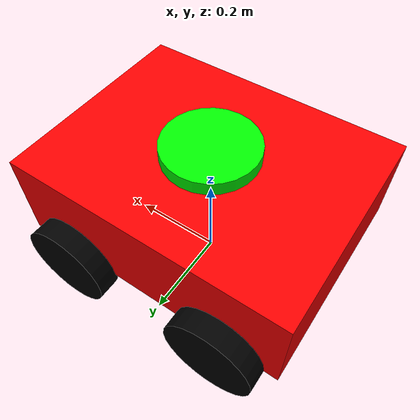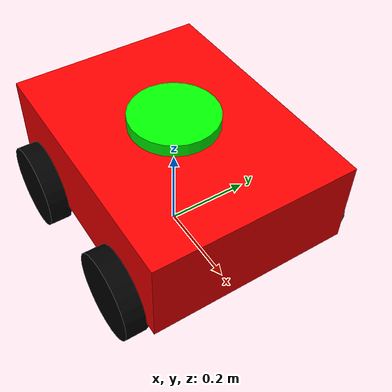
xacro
<?xml version="1.0"?>
<!-- Xacro file description-->
<robot name="myrobot" xmlns:xacro="http://www.ros.org/wiki/xacro" >

    <!-- dummy link-->
    <link name="robot_footprint"/>

    <!-- chassis link-->
    <link name="chassis">
        <inertial>
            <origin xyz="0.0 0.0 0.0" />
            <mass value="5"/>
        <inertia ixx="0.2367396327" ixy="-0.0001083173" ixz="-0.0001060526"
        iyy="0.4055129325" iyz="-0.0001774865" izz="0.329362691"/>
        </inertial>
        <visual>
            <origin xyz="0.0 0.0 0.2" />
            <geometry>
                <box size="0.6 0.46 0.2"/>
            </geometry>
            <material name="Red">
                <color rgba="1.0 0.0 0.0 1.0"/>
            </material>
        </visual>
        <collision>
            <origin xyz="0.0 0.0 0.2" />
            <geometry>
                <box size="0.6 0.46 0.2"/>
            </geometry>
            <material name="Red">
                <color rgba="1.0 0.0 0.0 1.0"/>
            </material>
        </collision>
    </link>

    <joint name="joint_chassis" type="fixed">
        <parent link="robot_footprint"/>
        <child link="chassis"/>
    </joint>

    <!-- Front left wheel link-->
    <link name="front_left_wheel">
        <inertial>
            <origin xyz="0.0 0.0 0.0" rpy="0.0 0.0 0.0"/>
            <mass value="1.1"/>
            <inertia ixx="0.0041010179" ixy="0.0" ixz="0.0" iyy="0.0041010198"
            iyz="0.0" izz="0.0076041438"/>
        </inertial>
        <visual name="front_left_wheel_visual">
            <origin xyz="0.0 0.0 0.0" rpy="0 1.5707 1.5707"/>
            <geometry>
                <cylinder radius="0.096" length="0.0498"/>
             </geometry>
             <material name="Black">
                <color rgba="0.0 0.0 0.0 1.0"/>
            </material>
        </visual>
        <collision name="front_left_wheel_collision">
            <origin xyz="0.0 0.0 0.0" rpy="0 1.5707 1.5707"/>
            <geometry>
                <cylinder radius="0.096" length="0.0498"/>
            </geometry>
            <material name="Black">
                <color rgba="0.0 0.0 0.0 1.0"/>
            </material>
        </collision>
    </link>
    <joint name="joint_front_left_wheel" type="continuous">
        <origin xyz="0.175 0.25 0.1" rpy="0.0 0.0 0.0"/>
        <parent link="chassis"/>
        <child link="front_left_wheel"/>
        <axis xyz="0 1 0" rpy="0 0 0"/>
        <limit effort="10000" velocity="1000" />
	    <dynamics damping="1.0" friction="1.0" />
    </joint>

    <!-- back left wheel link-->
    <link name="back_left_wheel">
        <inertial>
            <origin xyz="0.0 0.0 0.0" rpy="0.0 0.0 0.0"/>
            <mass value="1.1"/>
            <inertia ixx="0.0041010179" ixy="0.0" ixz="0.0" iyy="0.0041010198"
            iyz="0.0" izz="0.0076041438"/>
        </inertial>
        <visual name="back_left_wheel_visual">
            <origin xyz="0.0 0.0 0.0" rpy="0 1.5707 1.5707"/>
            <geometry>
                <cylinder radius="0.096" length="0.0498"/>
            </geometry>
            <material name="Black">
                <color rgba="0.0 0.0 0.0 1.0"/>
            </material>
        </visual>
        <collision name="back_left_wheel_collision">
            <origin xyz="0.0 0.0 0.0" rpy="0 1.5707 1.5707"/>
            <geometry>
                <cylinder radius="0.096" length="0.0498"/>
            </geometry>
            <material name="Black">
                <color rgba="0.0 0.0 0.0 1.0"/>
            </material>
        </collision>
    </link>
    <joint name="joint_back_left_wheel" type="continuous">
        <origin xyz="-0.175 0.25 0.1" rpy="0.0 0.0 0.0"/>
        <parent link="chassis"/>
        <child link="back_left_wheel"/>
        <axis xyz="0 1 0" rpy="0 0 0"/>
        <limit effort="10000" velocity="1000" />
	    <dynamics damping="1.0" friction="1.0" />
    </joint>

    <!-- front right wheel link-->
    <link name="front_right_wheel">
        <inertial>
            <origin xyz="0.0 0.0 0.0" rpy="0.0 0.0 0.0"/>
            <mass value="1.1"/>
            <inertia ixx="0.0041010179" ixy="0.0" ixz="0.0" iyy="0.0041010198"
            iyz="0.0" izz="0.0076041438"/>
        </inertial>
        <visual name="front_right_wheel_visual">
            <origin xyz="0.0 0.0 0.0" rpy="0 1.5707 1.5707"/>
            <geometry>
                <cylinder radius="0.096" length="0.0498"/>
            </geometry>
            <material name="Black">
                <color rgba="0.0 0.0 0.0 1.0"/>
            </material>
        </visual>
        <collision name="front_right_wheel_collision">
            <origin xyz="0.0 0.0 0.0" rpy="0 1.5707 1.5707"/>
            <geometry>
                <cylinder radius="0.096" length="0.0498"/>
            </geometry>
            <material name="Black">
                <color rgba="0.0 0.0 0.0 1.0"/>
            </material>
        </collision>
    </link>
    <joint name="joint_front_right_wheel" type="continuous">
        <origin xyz="0.175 -0.25 0.1" rpy="0.0 0.0 0.0"/>
        <parent link="chassis"/>
        <child link="front_right_wheel"/>
        <axis xyz="0 1 0" rpy="0 0 0"/>
        <limit effort="10000" velocity="1000" />
	    <dynamics damping="1.0" friction="1.0" />
    </joint>
    <!-- back right wheel link-->
    <link name="back_right_wheel">
        <inertial>
            <origin xyz="0.0 0.0 0.0" rpy="0.0 0.0 0.0"/>
            <mass value="1.1"/>
            <inertia ixx="0.0041010179" ixy="0.0" ixz="0.0" iyy="0.0041010198"
            iyz="0.0" izz="0.0076041438"/>
        </inertial>
        <visual name="back_right_wheel_visual">
            <origin xyz="0.0 0.0 0.0" rpy="0 1.5707 1.5707"/>
            <geometry>
                <cylinder radius="0.096" length="0.0498"/>
            </geometry>
            <material name="Black">
                <color rgba="0.0 0.0 0.0 1.0"/>
            </material>
        </visual>
        <collision name="back_right_wheel_collision">
            <origin xyz="0.0 0.0 0.0" rpy="0 1.5707 1.5707"/>
            <geometry>
                <cylinder radius="0.096" length="0.0498"/>
            </geometry>
            <material name="Black">
                <color rgba="0.0 0.0 0.0 1.0"/>
            </material>
        </collision>
    </link>
    <joint name="joint_back_right_wheel" type="continuous">
        <origin xyz="-0.175 -0.25 0.1" rpy="0.0 0.0 0.0"/>
        <parent link="chassis"/>
        <child link="back_right_wheel"/>
        <axis xyz="0 1 0" rpy="0 0 0"/>
        <limit effort="10000" velocity="1000" />
	    <dynamics damping="1.0" friction="1.0" />
    </joint>

    <!-- lidar link-->
    <link name="sensor">
        <inertial>
            <origin xyz="0 0 0" rpy="0 0 0"/>
            <mass value="0.09"/>
            <inertia ixx="0.001344214" ixy="0.000260552" ixz="0.0003818207" iyy="0.00011978775" iyz="0.0005722968" izz="0.00059837892"/>
        </inertial>
        <visual>
            <origin xyz="0 0 0" rpy="0 0 0"/>
            <geometry>
                <cylinder radius="0.1" length="0.05"/>
            </geometry>
            <material name="Green">
                <color rgba="0.0 1.0 0.0 1.0"/>
            </material>
        </visual>
        <collision>
            <origin xyz="0 0 0" rpy="0 0 0"/>
            <geometry>
                <cylinder radius="0.1" length="0.05"/>
            </geometry>
            <material name="Green">
                <color rgba="0.0 1.0 0.0 1.0"/>
            </material>
        </collision>
    </link>
    <joint name="sensor_joint" type="fixed">
        <origin xyz="0.0 0.0 0.304" rpy="0 0 0"/>
        <parent link="chassis"/>
        <child link="sensor"/>
        <axis xyz="0 0 0"/>
    </joint>
    <link name="imu">
        <inertial>
            <origin xyz="0 0 1" rpy="0 0 0"/>
            <mass value="1"/>
            <inertia ixx="1.0" ixy="0.0" ixz="0.0" iyy="1.0" iyz="0.0" izz="1.0"/>
        </inertial>
        <visual>
            <origin xyz="0.1 0 0.15" rpy="0 0 0"/>
            <geometry>
                <box size="0.02 0.02 0.02"/>
                <material name="Green">
                    <color rgba="0.0 1.0 0.0 1.0"/>
                </material>
            </geometry>
        </visual>
        <collision>
        <origin xyz="0.1 0 0.15" rpy="0 0 0"/>
            <geometry>
                <box size="0.02 0.02 0.02"/>
                <material name="Green">
                    <color rgba="0.0 1.0 0.0 1.0"/>
                </material>
            </geometry>
        </collision>
    </link>
    <joint name="imu_joint" type="fixed">
        <origin xyz="-0.1 0.0 0.0" rpy="0.0 0.0 0.0"/>
        <parent link="chassis"/>
        <child link="imu"/>
    </joint>

    <!-- Color of bot -->
    <gazebo reference="chassis">
		<material>Gazebo/Red</material>
	</gazebo>

    <gazebo reference="sensor">
        <material>Gazebo/Green</material>
    </gazebo>

    <gazebo reference="front_left_wheel">
		<material>Gazebo/Black</material>
		<kp>1000000.0</kp> <!-- kp and kd for rubber -->
		<kd>100.0</kd>
		<mu1>1.0</mu1>
		<mu2>1.0</mu2>
		<maxVel>1.0</maxVel>
		<minDepth>0.00</minDepth>
	</gazebo>

    <gazebo reference="back_left_wheel">
		<material>Gazebo/Black</material>
		<kp>1000000.0</kp> <!-- kp and kd for rubber -->
		<kd>100.0</kd>
		<mu1>1.0</mu1>
		<mu2>1.0</mu2>
		<maxVel>1.0</maxVel>
		<minDepth>0.00</minDepth>
	</gazebo>

    <gazebo reference="front_right_wheel">
		<material>Gazebo/Black</material>
		<kp>1000000.0</kp> <!-- kp and kd for rubber -->
		<kd>100.0</kd>
		<mu1>1.0</mu1>
		<mu2>1.0</mu2>
		<maxVel>1.0</maxVel>
		<minDepth>0.00</minDepth>
	</gazebo>

    <gazebo reference="back_right_wheel">
		<material>Gazebo/Black</material>
		<kp>1000000.0</kp> <!-- kp and kd for rubber -->
		<kd>100.0</kd>
		<mu1>1.0</mu1>
		<mu2>1.0</mu2>
		<maxVel>1.0</maxVel>
		<minDepth>0.00</minDepth>
	</gazebo>
</robot>
